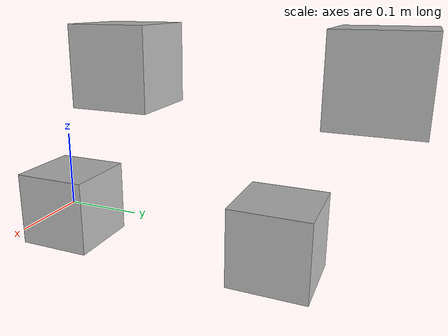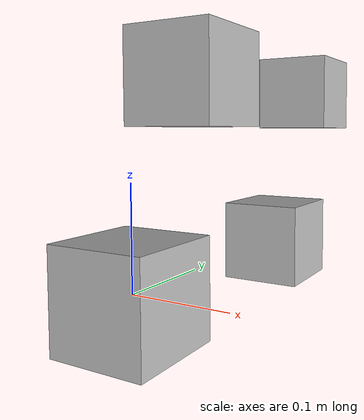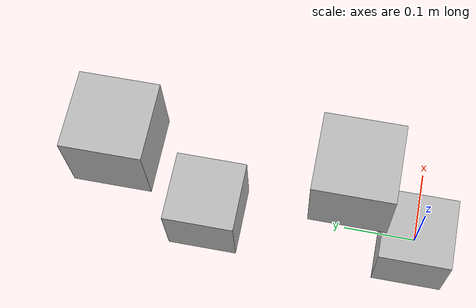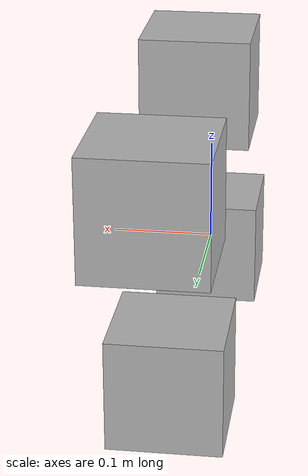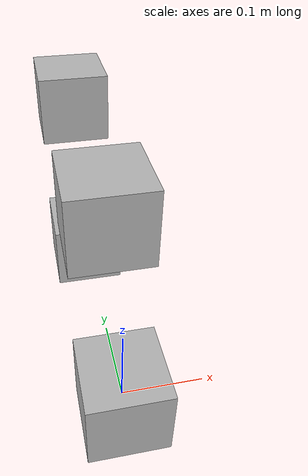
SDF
<?xml version='1.0' encoding='utf-8'?>
<sdf version="1.7">
  <model name="graph_four_bar">
    <link name="link_1">
      <pose>0 0 0 0 0 0</pose>
      <visual name="link_1_visual">
        <geometry>
          <box>
            <size>0.1 0.1 0.1</size>
          </box>
        </geometry>
      </visual>
      <collision name="link_1_collision">
        <geometry>
          <box>
            <size>0.1 0.1 0.1</size>
          </box>
        </geometry>
      </collision>
      <inertial>
        <mass>1.23</mass>
        <inertia>
          <ixx>0.00205</ixx>
          <ixy>0</ixy>
          <ixz>0</ixz>
          <iyy>0.00205</iyy>
          <iyz>0</iyz>
          <izz>0.00205</izz>
        </inertia>
      </inertial>
    </link>
    <link name="link_2">
      <pose>0 0.1 0.2 0 0 0</pose>
      <visual name="link_2_visual">
        <geometry>
          <box>
            <size>0.1 0.1 0.1</size>
          </box>
        </geometry>
      </visual>
      <collision name="link_2_collision">
        <geometry>
          <box>
            <size>0.1 0.1 0.1</size>
          </box>
        </geometry>
      </collision>
      <inertial>
        <mass>1.23</mass>
        <inertia>
          <ixx>0.00205</ixx>
          <ixy>0</ixy>
          <ixz>0</ixz>
          <iyy>0.00205</iyy>
          <iyz>0</iyz>
          <izz>0.00205</izz>
        </inertia>
      </inertial>
    </link>
    <link name="link_3">
      <pose>0 0.4 0.2 0 0 0</pose>
      <visual name="link_3_visual">
        <geometry>
          <box>
            <size>0.1 0.1 0.1</size>
          </box>
        </geometry>
      </visual>
      <collision name="link_3_collision">
        <geometry>
          <box>
            <size>0.1 0.1 0.1</size>
          </box>
        </geometry>
      </collision>
      <inertial>
        <mass>1.23</mass>
        <inertia>
          <ixx>0.00205</ixx>
          <ixy>0</ixy>
          <ixz>0</ixz>
          <iyy>0.00205</iyy>
          <iyz>0</iyz>
          <izz>0.00205</izz>
        </inertia>
      </inertial>
    </link>
    <link name="link_4">
      <pose>0 0.3 0 0 0 0</pose>
      <visual name="link_3_visual">
        <geometry>
          <box>
            <size>0.1 0.1 0.1</size>
          </box>
        </geometry>
      </visual>
      <collision name="link_3_collision">
        <geometry>
          <box>
            <size>0.1 0.1 0.1</size>
          </box>
        </geometry>
      </collision>
      <inertial>
        <mass>1.23</mass>
        <inertia>
          <ixx>0.00205</ixx>
          <ixy>0</ixy>
          <ixz>0</ixz>
          <iyy>0.00205</iyy>
          <iyz>0</iyz>
          <izz>0.00205</izz>
        </inertia>
      </inertial>
    </link>
    <joint name="joint_1" type="revolute">
      <parent>link_1</parent>
      <child>link_2</child>
      <axis>
        <xyz>1 0 0</xyz>
      </axis>
    </joint>
    <joint name="joint_2" type="revolute">
      <parent>link_2</parent>
      <child>link_3</child>
      <axis>
        <xyz>1 0 0</xyz>
      </axis>
    </joint>
    <joint name="joint_3" type="revolute">
      <parent>link_3</parent>
      <child>link_4</child>
      <axis>
        <xyz>1 0 0</xyz>
      </axis>
    </joint>
    <joint name="joint_4" type="revolute">
      <parent>link_4</parent>
      <child>link_1</child>
      <axis>
        <xyz>1 0 0</xyz>
      </axis>
    </joint>
  </model>
</sdf>
